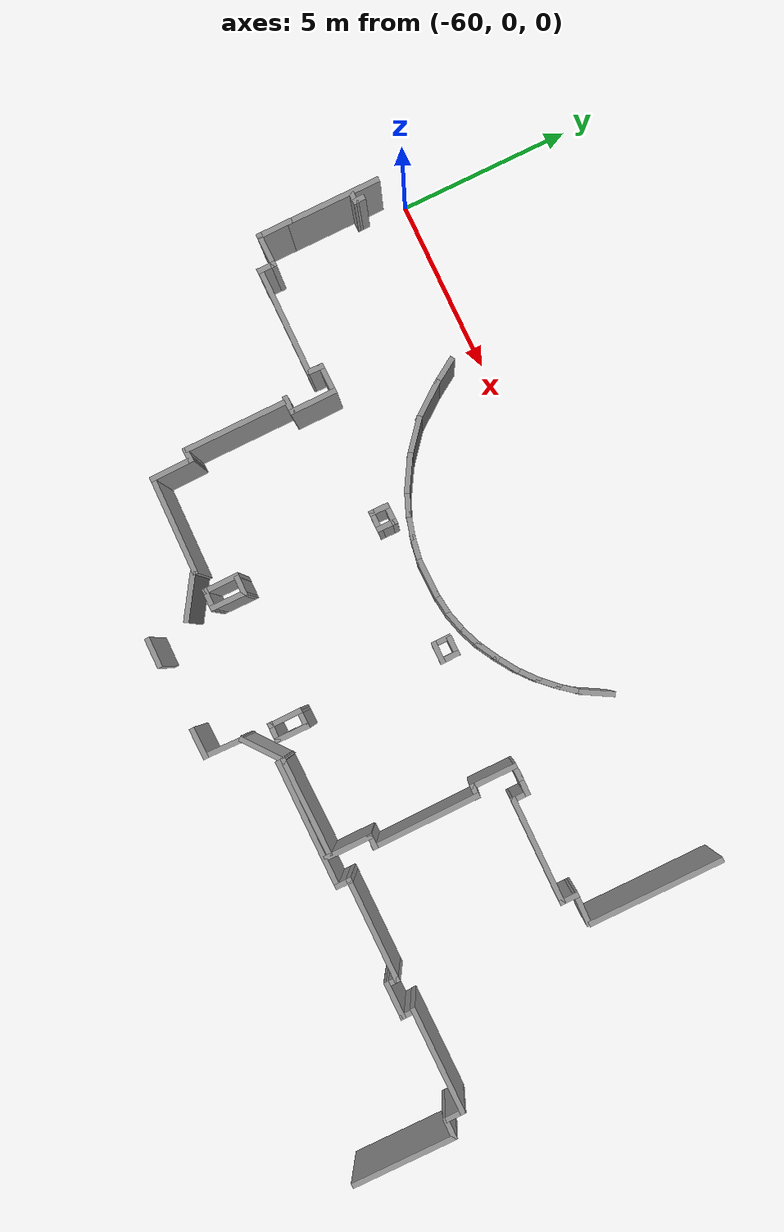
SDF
<sdf version="1.7">
 <model name="TD1-Mapa">
  <pose>-6.249136 -5.50363 0 0 -0 0</pose>
  <link name="Wall_10">
   <collision name="Wall_10_Collision">
    <geometry><box><size>3.14133 0.15 2.5</size></box></geometry>
    <pose>0 0 1.25 0 -0 0</pose>
   </collision>
   <visual name="Wall_10_Visual">
    <pose>0 0 1.25 0 -0 0</pose>
    <geometry><box><size>3.14133 0.15 2.5</size></box></geometry>
    <material>
     <script><uri>file://media/materials/scripts/gazebo.material</uri><name>Gazebo/Grey</name></script>
     <ambient>1 1 1 1</ambient>
    </material>
    <meta><layer>0</layer></meta>
   </visual>
   <pose>-32.074331 -3.879235 0 0 -0 0.0029303</pose>
  </link>
  <link name="Wall_11">
   <collision name="Wall_11_Collision">
    <geometry><box><size>0.6370333 0.15 2.5</size></box></geometry>
    <pose>0 0 1.25 0 -0 0</pose>
   </collision>
   <visual name="Wall_11_Visual">
    <pose>0 0 1.25 0 -0 0</pose>
    <geometry><box><size>0.6370333 0.15 2.5</size></box></geometry>
    <material>
     <script><uri>file://media/materials/scripts/gazebo.material</uri><name>Gazebo/Grey</name></script>
     <ambient>1 1 1 1</ambient>
    </material>
    <meta><layer>0</layer></meta>
   </visual>
   <pose>-30.57313 -4.118338 0 0 -0 -1.552934</pose>
  </link>
  <link name="Wall_118">
   <collision name="Wall_118_Collision">
    <geometry><box><size>1.404333 0.15 2.5</size></box></geometry>
    <pose>0 0 1.25 0 -0 0</pose>
   </collision>
   <visual name="Wall_118_Visual">
    <pose>0 0 1.25 0 -0 0</pose>
    <geometry><box><size>1.404333 0.15 2.5</size></box></geometry>
    <material>
     <script><uri>file://media/materials/scripts/gazebo.material</uri><name>Gazebo/Grey</name></script>
     <ambient>1 1 1 1</ambient>
    </material>
    <meta><layer>0</layer></meta>
   </visual>
   <pose>-46.13293 -4.517734 0 0 -0 2.561139</pose>
  </link>
  <link name="Wall_12">
   <collision name="Wall_12_Collision">
    <geometry><box><size>0.6637303 0.15 2.5</size></box></geometry>
    <pose>0 0 1.25 0 -0 0</pose>
   </collision>
   <visual name="Wall_12_Visual">
    <pose>0 0 1.25 0 -0 0</pose>
    <geometry><box><size>0.6637303 0.15 2.5</size></box></geometry>
    <material>
     <script><uri>file://media/materials/scripts/gazebo.material</uri><name>Gazebo/Grey</name></script>
     <ambient>1 1 1 1</ambient>
    </material>
    <meta><layer>0</layer></meta>
   </visual>
   <pose>-30.31223 -4.366231 0 0 -0 -0.0169343</pose>
  </link>
  <link name="Wall_121">
   <collision name="Wall_121_Collision">
    <geometry><box><size>0.8739353 0.15 2.5</size></box></geometry>
    <pose>0 0 1.25 0 -0 0</pose>
   </collision>
   <visual name="Wall_121_Visual">
    <pose>0 0 1.25 0 -0 0</pose>
    <geometry><box><size>0.8739353 0.15 2.5</size></box></geometry>
    <material>
     <script><uri>file://media/materials/scripts/gazebo.material</uri><name>Gazebo/Grey</name></script>
     <ambient>1 1 1 1</ambient>
    </material>
    <meta><layer>0</layer></meta>
   </visual>
   <pose>-45.195 -6.03653 0 0 -0 -0.0156323</pose>
  </link>
  <link name="Wall_123">
   <collision name="Wall_123_Collision">
    <geometry><box><size>2.886937 0.15 2.5</size></box></geometry>
    <pose>0 0 1.25 0 -0 0</pose>
   </collision>
   <visual name="Wall_123_Visual">
    <pose>0 0 1.25 0 -0 0</pose>
    <geometry><box><size>2.886937 0.15 2.5</size></box></geometry>
    <material>
     <script><uri>file://media/materials/scripts/gazebo.material</uri><name>Gazebo/Grey</name></script>
     <ambient>1 1 1 1</ambient>
    </material>
    <meta><layer>0</layer></meta>
   </visual>
   <pose>-48.04553 -4.0742393 0 0 -0 3.119734</pose>
  </link>
  <link name="Wall_124">
   <collision name="Wall_124_Collision">
    <geometry><box><size>1.282234 0.15 2.5</size></box></geometry>
    <pose>0 0 1.25 0 -0 0</pose>
   </collision>
   <visual name="Wall_124_Visual">
    <pose>0 0 1.25 0 -0 0</pose>
    <geometry><box><size>1.282234 0.15 2.5</size></box></geometry>
    <material>
     <script><uri>file://media/materials/scripts/gazebo.material</uri><name>Gazebo/Grey</name></script>
     <ambient>1 1 1 1</ambient>
    </material>
    <meta><layer>0</layer></meta>
   </visual>
   <pose>-49.42543 -3.477038 0 0 -0 1.591531</pose>
  </link>
  <link name="Wall_126">
   <collision name="Wall_126_Collision">
    <geometry><box><size>0.43153633 0.15 2.5</size></box></geometry>
    <pose>0 0 1.25 0 -0 0</pose>
   </collision>
   <visual name="Wall_126_Visual">
    <pose>0 0 1.25 0 -0 0</pose>
    <geometry><box><size>0.43153633 0.15 2.5</size></box></geometry>
    <material>
     <script><uri>file://media/materials/scripts/gazebo.material</uri><name>Gazebo/Grey</name></script>
     <ambient>1 1 1 1</ambient>
    </material>
    <meta><layer>0</layer></meta>
   </visual>
   <pose>-49.58423 -2.918035 0 0 -0 -3.092738</pose>
  </link>
  <link name="Wall_127">
   <collision name="Wall_127_Collision">
    <geometry><box><size>3.03733 0.15 2.5</size></box></geometry>
    <pose>0 0 1.25 0 -0 0</pose>
   </collision>
   <visual name="Wall_127_Visual">
    <pose>0 0 1.25 0 -0 0</pose>
    <geometry><box><size>3.03733 0.15 2.5</size></box></geometry>
    <material>
     <script><uri>file://media/materials/scripts/gazebo.material</uri><name>Gazebo/Grey</name></script>
     <ambient>1 1 1 1</ambient>
    </material>
    <meta><layer>0</layer></meta>
   </visual>
   <pose>-49.73273 -1.473936 0 0 -0 1.574739</pose>
  </link>
  <link name="Wall_135">
   <collision name="Wall_135_Collision">
    <geometry><box><size>0.5266323 0.15 2.5</size></box></geometry>
    <pose>0 0 1.25 0 -0 0</pose>
   </collision>
   <visual name="Wall_135_Visual">
    <pose>0 0 1.25 0 -0 0</pose>
    <geometry><box><size>0.5266323 0.15 2.5</size></box></geometry>
    <material>
     <script><uri>file://media/materials/scripts/gazebo.material</uri><name>Gazebo/Grey</name></script>
     <ambient>1 1 1 1</ambient>
    </material>
    <meta><layer>0</layer></meta>
   </visual>
   <pose>-49.63593 0.0964343 0 0 -0 3.141539</pose>
  </link>
  <link name="Wall_137">
   <collision name="Wall_137_Collision">
    <geometry><box><size>1.381131 0.15 2.5</size></box></geometry>
    <pose>0 0 1.25 0 -0 0</pose>
   </collision>
   <visual name="Wall_137_Visual">
    <pose>0 0 1.25 0 -0 0</pose>
    <geometry><box><size>1.381131 0.15 2.5</size></box></geometry>
    <material>
     <script><uri>file://media/materials/scripts/gazebo.material</uri><name>Gazebo/Grey</name></script>
     <ambient>1 1 1 1</ambient>
    </material>
    <meta><layer>0</layer></meta>
   </visual>
   <pose>-49.431639 0.7257373 0 0 -0 1.577734</pose>
  </link>
  <link name="Wall_138">
   <collision name="Wall_138_Collision">
    <geometry><box><size>0.8938323 0.15 2.5</size></box></geometry>
    <pose>0 0 1.25 0 -0 0</pose>
   </collision>
   <visual name="Wall_138_Visual">
    <pose>0 0 1.25 0 -0 0</pose>
    <geometry><box><size>0.8938323 0.15 2.5</size></box></geometry>
    <material>
     <script><uri>file://media/materials/scripts/gazebo.material</uri><name>Gazebo/Grey</name></script>
     <ambient>1 1 1 1</ambient>
    </material>
    <meta><layer>0</layer></meta>
   </visual>
   <pose>-49.813 1.337034 0 0 -0 -3.13013</pose>
  </link>
  <link name="Wall_139">
   <collision name="Wall_139_Collision">
    <geometry><box><size>0.4582343 0.15 2.5</size></box></geometry>
    <pose>0 0 1.25 0 -0 0</pose>
   </collision>
   <visual name="Wall_139_Visual">
    <pose>0 0 1.25 0 -0 0</pose>
    <geometry><box><size>0.4582343 0.15 2.5</size></box></geometry>
    <material>
     <script><uri>file://media/materials/scripts/gazebo.material</uri><name>Gazebo/Grey</name></script>
     <ambient>1 1 1 1</ambient>
    </material>
    <meta><layer>0</layer></meta>
   </visual>
   <pose>-50.18923 1.178838 0 0 -0 -1.598537</pose>
  </link>
  <link name="Wall_141">
   <collision name="Wall_141_Collision">
    <geometry><box><size>3.031039 0.15 2.5</size></box></geometry>
    <pose>0 0 1.25 0 -0 0</pose>
   </collision>
   <visual name="Wall_141_Visual">
    <pose>0 0 1.25 0 -0 0</pose>
    <geometry><box><size>3.031039 0.15 2.5</size></box></geometry>
    <material>
     <script><uri>file://media/materials/scripts/gazebo.material</uri><name>Gazebo/Grey</name></script>
     <ambient>1 1 1 1</ambient>
    </material>
    <meta><layer>0</layer></meta>
   </visual>
   <pose>-51.65113 0.9694323 0 0 -0 -0.0029363</pose>
  </link>
  <link name="Wall_143">
   <collision name="Wall_143_Collision">
    <geometry><box><size>0.5432363 0.15 2.5</size></box></geometry>
    <pose>0 0 1.25 0 -0 0</pose>
   </collision>
   <visual name="Wall_143_Visual">
    <pose>0 0 1.25 0 -0 0</pose>
    <geometry><box><size>0.5432363 0.15 2.5</size></box></geometry>
    <material>
     <script><uri>file://media/materials/scripts/gazebo.material</uri><name>Gazebo/Grey</name></script>
     <ambient>1 1 1 1</ambient>
    </material>
    <meta><layer>0</layer></meta>
   </visual>
   <pose>-53.22283 1.159635 0 0 -0 -1.57083</pose>
  </link>
  <link name="Wall_146">
   <collision name="Wall_146_Collision">
    <geometry><box><size>1.008235 0.15 2.5</size></box></geometry>
    <pose>0 0 1.25 0 -0 0</pose>
   </collision>
   <visual name="Wall_146_Visual">
    <pose>0 0 1.25 0 -0 0</pose>
    <geometry><box><size>1.008235 0.15 2.5</size></box></geometry>
    <material>
     <script><uri>file://media/materials/scripts/gazebo.material</uri><name>Gazebo/Grey</name></script>
     <ambient>1 1 1 1</ambient>
    </material>
    <meta><layer>0</layer></meta>
   </visual>
   <pose>-53.64573 1.355236 0 0 -0 0.0045343</pose>
  </link>
  <link name="Wall_149">
   <collision name="Wall_149_Collision">
    <geometry><box><size>1.034735 0.15 2.5</size></box></geometry>
    <pose>0 0 1.25 0 -0 0</pose>
   </collision>
   <visual name="Wall_149_Visual">
    <pose>0 0 1.25 0 -0 0</pose>
    <geometry><box><size>1.034735 0.15 2.5</size></box></geometry>
    <material>
     <script><uri>file://media/materials/scripts/gazebo.material</uri><name>Gazebo/Grey</name></script>
     <ambient>1 1 1 1</ambient>
    </material>
    <meta><layer>0</layer></meta>
   </visual>
   <pose>-54.074733 1.795638 0 0 -0 -1.565237</pose>
  </link>
  <link name="Wall_151">
   <collision name="Wall_151_Collision">
    <geometry><box><size>2.75 0.15 2.5</size></box></geometry>
    <pose>0 0 1.25 0 -0 0</pose>
   </collision>
   <visual name="Wall_151_Visual">
    <pose>0 0 1.25 0 -0 0</pose>
    <geometry><box><size>2.75 0.15 2.5</size></box></geometry>
    <material>
     <script><uri>file://media/materials/scripts/gazebo.material</uri><name>Gazebo/Grey</name></script>
     <ambient>1 1 1 1</ambient>
    </material>
    <meta><layer>0</layer></meta>
   </visual>
   <pose>-54.074937 3.538035 0 0 -0 1.57083</pose>
  </link>
  <link name="Wall_153">
   <collision name="Wall_153_Collision">
    <geometry><box><size>0.3795303 0.15 2.5</size></box></geometry>
    <pose>0 0 1.25 0 -0 0</pose>
   </collision>
   <visual name="Wall_153_Visual">
    <pose>0 0 1.25 0 -0 0</pose>
    <geometry><box><size>0.3795303 0.15 2.5</size></box></geometry>
    <material>
     <script><uri>file://media/materials/scripts/gazebo.material</uri><name>Gazebo/Grey</name></script>
     <ambient>1 1 1 1</ambient>
    </material>
    <meta><layer>0</layer></meta>
   </visual>
   <pose>-53.91733 4.0747373 0 0 -0 0</pose>
  </link>
  <link name="Wall_154">
   <collision name="Wall_154_Collision">
    <geometry><box><size>0.3569363 0.15 2.5</size></box></geometry>
    <pose>0 0 1.25 0 -0 0</pose>
   </collision>
   <visual name="Wall_154_Visual">
    <pose>0 0 1.25 0 -0 0</pose>
    <geometry><box><size>0.3569363 0.15 2.5</size></box></geometry>
    <material>
     <script><uri>file://media/materials/scripts/gazebo.material</uri><name>Gazebo/Grey</name></script>
     <ambient>1 1 1 1</ambient>
    </material>
    <meta><layer>0</layer></meta>
   </visual>
   <pose>-53.80583 4.181135 0 0 -0 1.602034</pose>
  </link>
  <link name="Wall_16">
   <collision name="Wall_16_Collision">
    <geometry><box><size>3.083039 0.15 2.5</size></box></geometry>
    <pose>0 0 1.25 0 -0 0</pose>
   </collision>
   <visual name="Wall_16_Visual">
    <pose>0 0 1.25 0 -0 0</pose>
    <geometry><box><size>3.083039 0.15 2.5</size></box></geometry>
    <material>
     <script><uri>file://media/materials/scripts/gazebo.material</uri><name>Gazebo/Grey</name></script>
     <ambient>1 1 1 1</ambient>
    </material>
    <meta><layer>0</layer></meta>
   </visual>
   <pose>-30.06263 -5.837039 0 0 -0 -1.575533</pose>
  </link>
  <link name="Wall_2">
   <collision name="Wall_2_Collision">
    <geometry><box><size>3.795532 0.15 2.5</size></box></geometry>
    <pose>0 0 1.25 0 -0 0</pose>
   </collision>
   <visual name="Wall_2_Visual">
    <pose>0 0 1.25 0 -0 0</pose>
    <geometry><box><size>3.795532 0.15 2.5</size></box></geometry>
    <material>
     <script><uri>file://media/materials/scripts/gazebo.material</uri><name>Gazebo/Grey</name></script>
     <ambient>1 1 1 1</ambient>
    </material>
    <meta><layer>0</layer></meta>
   </visual>
   <pose>-39.25523 -4.287838 0 0 -0 0</pose>
  </link>
  <link name="Wall_221">
   <collision name="Wall_221_Collision">
    <geometry><box><size>1.081638 0.15 2.5</size></box></geometry>
    <pose>0 0 1.25 0 -0 0</pose>
   </collision>
   <visual name="Wall_221_Visual">
    <pose>0 0 1.25 0 -0 0</pose>
    <geometry><box><size>1.081638 0.15 2.5</size></box></geometry>
    <material>
     <script><uri>file://media/materials/scripts/gazebo.material</uri><name>Gazebo/Grey</name></script>
     <ambient>1 1 1 1</ambient>
    </material>
    <meta><layer>0</layer></meta>
   </visual>
   <pose>-46.08893 -3.611437 0 0 -0 -1.563835</pose>
  </link>
  <link name="Wall_222">
   <collision name="Wall_222_Collision">
    <geometry><box><size>0.6414363 0.15 2.5</size></box></geometry>
    <pose>0 0 1.25 0 -0 0</pose>
   </collision>
   <visual name="Wall_222_Visual">
    <pose>0 0 1.25 0 -0 0</pose>
    <geometry><box><size>0.6414363 0.15 2.5</size></box></geometry>
    <material>
     <script><uri>file://media/materials/scripts/gazebo.material</uri><name>Gazebo/Grey</name></script>
     <ambient>1 1 1 1</ambient>
    </material>
    <meta><layer>0</layer></meta>
   </visual>
   <pose>-45.84 -4.083337 0 0 -0 -0.026331</pose>
  </link>
  <link name="Wall_223">
   <collision name="Wall_223_Collision">
    <geometry><box><size>1.08093 0.15 2.5</size></box></geometry>
    <pose>0 0 1.25 0 -0 0</pose>
   </collision>
   <visual name="Wall_223_Visual">
    <pose>0 0 1.25 0 -0 0</pose>
    <geometry><box><size>1.08093 0.15 2.5</size></box></geometry>
    <material>
     <script><uri>file://media/materials/scripts/gazebo.material</uri><name>Gazebo/Grey</name></script>
     <ambient>1 1 1 1</ambient>
    </material>
    <meta><layer>0</layer></meta>
   </visual>
   <pose>-45.59123 -3.624339 0 0 -0 1.563835</pose>
  </link>
  <link name="Wall_224">
   <collision name="Wall_224_Collision">
    <geometry><box><size>0.589737 0.15 2.5</size></box></geometry>
    <pose>0 0 1.25 0 -0 0</pose>
   </collision>
   <visual name="Wall_224_Visual">
    <pose>0 0 1.25 0 -0 0</pose>
    <geometry><box><size>0.589737 0.15 2.5</size></box></geometry>
    <material>
     <script><uri>file://media/materials/scripts/gazebo.material</uri><name>Gazebo/Grey</name></script>
     <ambient>1 1 1 1</ambient>
    </material>
    <meta><layer>0</layer></meta>
   </visual>
   <pose>-45.80773 -3.155732 0 0 -0 3.126839</pose>
  </link>
  <link name="Wall_226">
   <collision name="Wall_226_Collision">
    <geometry><box><size>0.5768343 0.15 2.5</size></box></geometry>
    <pose>0 0 1.25 0 -0 0</pose>
   </collision>
   <visual name="Wall_226_Visual">
    <pose>0 0 1.25 0 -0 0</pose>
    <geometry><box><size>0.5768343 0.15 2.5</size></box></geometry>
    <material>
     <script><uri>file://media/materials/scripts/gazebo.material</uri><name>Gazebo/Grey</name></script>
     <ambient>1 1 1 1</ambient>
    </material>
    <meta><layer>0</layer></meta>
   </visual>
   <pose>-41.87743 -4.047831 0 0 -0 3.126434</pose>
  </link>
  <link name="Wall_227">
   <collision name="Wall_227_Collision">
    <geometry><box><size>1.003532 0.15 2.5</size></box></geometry>
    <pose>0 0 1.25 0 -0 0</pose>
   </collision>
   <visual name="Wall_227_Visual">
    <pose>0 0 1.25 0 -0 0</pose>
    <geometry><box><size>1.003532 0.15 2.5</size></box></geometry>
    <material>
     <script><uri>file://media/materials/scripts/gazebo.material</uri><name>Gazebo/Grey</name></script>
     <ambient>1 1 1 1</ambient>
    </material>
    <meta><layer>0</layer></meta>
   </visual>
   <pose>-42.09393 -3.617933 0 0 -0 1.578337</pose>
  </link>
  <link name="Wall_228">
   <collision name="Wall_228_Collision">
    <geometry><box><size>0.6025303 0.15 2.5</size></box></geometry>
    <pose>0 0 1.25 0 -0 0</pose>
   </collision>
   <visual name="Wall_228_Visual">
    <pose>0 0 1.25 0 -0 0</pose>
    <geometry><box><size>0.6025303 0.15 2.5</size></box></geometry>
    <material>
     <script><uri>file://media/materials/scripts/gazebo.material</uri><name>Gazebo/Grey</name></script>
     <ambient>1 1 1 1</ambient>
    </material>
    <meta><layer>0</layer></meta>
   </visual>
   <pose>-41.87093 -3.191238 0 0 -0 0</pose>
  </link>
  <link name="Wall_229">
   <collision name="Wall_229_Collision">
    <geometry><box><size>0.9839303 0.15 2.5</size></box></geometry>
    <pose>0 0 1.25 0 -0 0</pose>
   </collision>
   <visual name="Wall_229_Visual">
    <pose>0 0 1.25 0 -0 0</pose>
    <geometry><box><size>0.9839303 0.15 2.5</size></box></geometry>
    <material>
     <script><uri>file://media/materials/scripts/gazebo.material</uri><name>Gazebo/Grey</name></script>
     <ambient>1 1 1 1</ambient>
    </material>
    <meta><layer>0</layer></meta>
   </visual>
   <pose>-41.64463 -3.608233 0 0 -0 -1.57083</pose>
  </link>
  <link name="Wall_231">
   <collision name="Wall_231_Collision">
    <geometry><box><size>0.6125303 0.15 2.5</size></box></geometry>
    <pose>0 0 1.25 0 -0 0</pose>
   </collision>
   <visual name="Wall_231_Visual">
    <pose>0 0 1.25 0 -0 0</pose>
    <geometry><box><size>0.6125303 0.15 2.5</size></box></geometry>
    <material>
     <script><uri>file://media/materials/scripts/gazebo.material</uri><name>Gazebo/Grey</name></script>
     <ambient>1 1 1 1</ambient>
    </material>
    <meta><layer>0</layer></meta>
   </visual>
   <pose>-45.80513 1.292136 0 0 -0 0</pose>
  </link>
  <link name="Wall_232">
   <collision name="Wall_232_Collision">
    <geometry><box><size>0.592432 0.15 2.5</size></box></geometry>
    <pose>0 0 1.25 0 -0 0</pose>
   </collision>
   <visual name="Wall_232_Visual">
    <pose>0 0 1.25 0 -0 0</pose>
    <geometry><box><size>0.592432 0.15 2.5</size></box></geometry>
    <material>
     <script><uri>file://media/materials/scripts/gazebo.material</uri><name>Gazebo/Grey</name></script>
     <ambient>1 1 1 1</ambient>
    </material>
    <meta><layer>0</layer></meta>
   </visual>
   <pose>-45.57413 1.0740393 0 0 -0 -1.57083</pose>
  </link>
  <link name="Wall_233">
   <collision name="Wall_233_Collision">
    <geometry><box><size>0.6220313 0.15 2.5</size></box></geometry>
    <pose>0 0 1.25 0 -0 0</pose>
   </collision>
   <visual name="Wall_233_Visual">
    <pose>0 0 1.25 0 -0 0</pose>
    <geometry><box><size>0.6220313 0.15 2.5</size></box></geometry>
    <material>
     <script><uri>file://media/materials/scripts/gazebo.material</uri><name>Gazebo/Grey</name></script>
     <ambient>1 1 1 1</ambient>
    </material>
    <meta><layer>0</layer></meta>
   </visual>
   <pose>-45.81 0.8497343 0 0 -0 3.141539</pose>
  </link>
  <link name="Wall_234">
   <collision name="Wall_234_Collision">
    <geometry><box><size>0.5825383 0.15 2.5</size></box></geometry>
    <pose>0 0 1.25 0 -0 0</pose>
   </collision>
   <visual name="Wall_234_Visual">
    <pose>0 0 1.25 0 -0 0</pose>
    <geometry><box><size>0.5825383 0.15 2.5</size></box></geometry>
    <material>
     <script><uri>file://media/materials/scripts/gazebo.material</uri><name>Gazebo/Grey</name></script>
     <ambient>1 1 1 1</ambient>
    </material>
    <meta><layer>0</layer></meta>
   </visual>
   <pose>-46.046 1.066034 0 0 -0 1.57083</pose>
  </link>
  <link name="Wall_236">
   <collision name="Wall_236_Collision">
    <geometry><box><size>0.6022353 0.15 2.5</size></box></geometry>
    <pose>0 0 1.25 0 -0 0</pose>
   </collision>
   <visual name="Wall_236_Visual">
    <pose>0 0 1.25 0 -0 0</pose>
    <geometry><box><size>0.6022353 0.15 2.5</size></box></geometry>
    <material>
     <script><uri>file://media/materials/scripts/gazebo.material</uri><name>Gazebo/Grey</name></script>
     <ambient>1 1 1 1</ambient>
    </material>
    <meta><layer>0</layer></meta>
   </visual>
   <pose>-41.88733 1.282333 0 0 -0 0</pose>
  </link>
  <link name="Wall_237">
   <collision name="Wall_237_Collision">
    <geometry><box><size>0.5925323 0.15 2.5</size></box></geometry>
    <pose>0 0 1.25 0 -0 0</pose>
   </collision>
   <visual name="Wall_237_Visual">
    <pose>0 0 1.25 0 -0 0</pose>
    <geometry><box><size>0.5925323 0.15 2.5</size></box></geometry>
    <material>
     <script><uri>file://media/materials/scripts/gazebo.material</uri><name>Gazebo/Grey</name></script>
     <ambient>1 1 1 1</ambient>
    </material>
    <meta><layer>0</layer></meta>
   </visual>
   <pose>-41.65623 1.061132 0 0 -0 -1.548538</pose>
  </link>
  <link name="Wall_238">
   <collision name="Wall_238_Collision">
    <geometry><box><size>0.6462343 0.15 2.5</size></box></geometry>
    <pose>0 0 1.25 0 -0 0</pose>
   </collision>
   <visual name="Wall_238_Visual">
    <pose>0 0 1.25 0 -0 0</pose>
    <geometry><box><size>0.6462343 0.15 2.5</size></box></geometry>
    <material>
     <script><uri>file://media/materials/scripts/gazebo.material</uri><name>Gazebo/Grey</name></script>
     <ambient>1 1 1 1</ambient>
    </material>
    <meta><layer>0</layer></meta>
   </visual>
   <pose>-41.89943 0.8418323 0 0 -0 3.13393</pose>
  </link>
  <link name="Wall_239">
   <collision name="Wall_239_Collision">
    <geometry><box><size>0.5692363 0.15 2.5</size></box></geometry>
    <pose>0 0 1.25 0 -0 0</pose>
   </collision>
   <visual name="Wall_239_Visual">
    <pose>0 0 1.25 0 -0 0</pose>
    <geometry><box><size>0.5692363 0.15 2.5</size></box></geometry>
    <material>
     <script><uri>file://media/materials/scripts/gazebo.material</uri><name>Gazebo/Grey</name></script>
     <ambient>1 1 1 1</ambient>
    </material>
    <meta><layer>0</layer></meta>
   </visual>
   <pose>-42.15013 1.05323 0 0 -0 1.583136</pose>
  </link>
  <link name="Wall_305">
   <collision name="Wall_305_Collision">
    <geometry><box><size>1.00543 0.15 2.5</size></box></geometry>
    <pose>0 0 1.25 0 -0 0</pose>
   </collision>
   <visual name="Wall_305_Visual">
    <pose>0 0 1.25 0 -0 0</pose>
    <geometry><box><size>1.00543 0.15 2.5</size></box></geometry>
    <material>
     <script><uri>file://media/materials/scripts/gazebo.material</uri><name>Gazebo/Grey</name></script>
     <ambient>1 1 1 1</ambient>
    </material>
    <meta><layer>0</layer></meta>
   </visual>
   <pose>-39.09183 4.207631 0 0 -0 -2.08723</pose>
  </link>
  <link name="Wall_306">
   <collision name="Wall_306_Collision">
    <geometry><box><size>0.7594323 0.15 2.5</size></box></geometry>
    <pose>0 0 1.25 0 -0 0</pose>
   </collision>
   <visual name="Wall_306_Visual">
    <pose>0 0 1.25 0 -0 0</pose>
    <geometry><box><size>0.7594323 0.15 2.5</size></box></geometry>
    <material>
     <script><uri>file://media/materials/scripts/gazebo.material</uri><name>Gazebo/Grey</name></script>
     <ambient>1 1 1 1</ambient>
    </material>
    <meta><layer>0</layer></meta>
   </visual>
   <pose>-39.49533 3.599239 0 0 -0 -2.253631</pose>
  </link>
  <link name="Wall_307">
   <collision name="Wall_307_Collision">
    <geometry><box><size>0.7206333 0.15 2.5</size></box></geometry>
    <pose>0 0 1.25 0 -0 0</pose>
   </collision>
   <visual name="Wall_307_Visual">
    <pose>0 0 1.25 0 -0 0</pose>
    <geometry><box><size>0.7206333 0.15 2.5</size></box></geometry>
    <material>
     <script><uri>file://media/materials/scripts/gazebo.material</uri><name>Gazebo/Grey</name></script>
     <ambient>1 1 1 1</ambient>
    </material>
    <meta><layer>0</layer></meta>
   </visual>
   <pose>-39.88613 3.158031 0 0 -0 -2.340537</pose>
  </link>
  <link name="Wall_309">
   <collision name="Wall_309_Collision">
    <geometry><box><size>0.7830333 0.15 2.5</size></box></geometry>
    <pose>0 0 1.25 0 -0 0</pose>
   </collision>
   <visual name="Wall_309_Visual">
    <pose>0 0 1.25 0 -0 0</pose>
    <geometry><box><size>0.7830333 0.15 2.5</size></box></geometry>
    <material>
     <script><uri>file://media/materials/scripts/gazebo.material</uri><name>Gazebo/Grey</name></script>
     <ambient>1 1 1 1</ambient>
    </material>
    <meta><layer>0</layer></meta>
   </visual>
   <pose>-40.329 2.745037 0 0 -0 -2.445339</pose>
  </link>
  <link name="Wall_310">
   <collision name="Wall_310_Collision">
    <geometry><box><size>0.7794313 0.15 2.5</size></box></geometry>
    <pose>0 0 1.25 0 -0 0</pose>
   </collision>
   <visual name="Wall_310_Visual">
    <pose>0 0 1.25 0 -0 0</pose>
    <geometry><box><size>0.7794313 0.15 2.5</size></box></geometry>
    <material>
     <script><uri>file://media/materials/scripts/gazebo.material</uri><name>Gazebo/Grey</name></script>
     <ambient>1 1 1 1</ambient>
    </material>
    <meta><layer>0</layer></meta>
   </visual>
   <pose>-40.83643 2.371732 0 0 -0 -2.569536</pose>
  </link>
  <link name="Wall_311">
   <collision name="Wall_311_Collision">
    <geometry><box><size>0.7572353 0.15 2.5</size></box></geometry>
    <pose>0 0 1.25 0 -0 0</pose>
   </collision>
   <visual name="Wall_311_Visual">
    <pose>0 0 1.25 0 -0 0</pose>
    <geometry><box><size>0.7572353 0.15 2.5</size></box></geometry>
    <material>
     <script><uri>file://media/materials/scripts/gazebo.material</uri><name>Gazebo/Grey</name></script>
     <ambient>1 1 1 1</ambient>
    </material>
    <meta><layer>0</layer></meta>
   </visual>
   <pose>-41.36673 2.05433 0 0 -0 -2.635938</pose>
  </link>
  <link name="Wall_312">
   <collision name="Wall_312_Collision">
    <geometry><box><size>0.6669353 0.15 2.5</size></box></geometry>
    <pose>0 0 1.25 0 -0 0</pose>
   </collision>
   <visual name="Wall_312_Visual">
    <pose>0 0 1.25 0 -0 0</pose>
    <geometry><box><size>0.6669353 0.15 2.5</size></box></geometry>
    <material>
     <script><uri>file://media/materials/scripts/gazebo.material</uri><name>Gazebo/Grey</name></script>
     <ambient>1 1 1 1</ambient>
    </material>
    <meta><layer>0</layer></meta>
   </visual>
   <pose>-41.87573 1.809337 0 0 -0 -2.753237</pose>
  </link>
  <link name="Wall_314">
   <collision name="Wall_314_Collision">
    <geometry><box><size>0.6688333 0.15 2.5</size></box></geometry>
    <pose>0 0 1.25 0 -0 0</pose>
   </collision>
   <visual name="Wall_314_Visual">
    <pose>0 0 1.25 0 -0 0</pose>
    <geometry><box><size>0.6688333 0.15 2.5</size></box></geometry>
    <material>
     <script><uri>file://media/materials/scripts/gazebo.material</uri><name>Gazebo/Grey</name></script>
     <ambient>1 1 1 1</ambient>
    </material>
    <meta><layer>0</layer></meta>
   </visual>
   <pose>-42.44623 1.619935 0 0 -0 -2.872839</pose>
  </link>
  <link name="Wall_316">
   <collision name="Wall_316_Collision">
    <geometry><box><size>0.6588373 0.15 2.5</size></box></geometry>
    <pose>0 0 1.25 0 -0 0</pose>
   </collision>
   <visual name="Wall_316_Visual">
    <pose>0 0 1.25 0 -0 0</pose>
    <geometry><box><size>0.6588373 0.15 2.5</size></box></geometry>
    <material>
     <script><uri>file://media/materials/scripts/gazebo.material</uri><name>Gazebo/Grey</name></script>
     <ambient>1 1 1 1</ambient>
    </material>
    <meta><layer>0</layer></meta>
   </visual>
   <pose>-43.07413 1.501 0 0 -0 -3.011839</pose>
  </link>
  <link name="Wall_318">
   <collision name="Wall_318_Collision">
    <geometry><box><size>1.134332 0.15 2.5</size></box></geometry>
    <pose>0 0 1.25 0 -0 0</pose>
   </collision>
   <visual name="Wall_318_Visual">
    <pose>0 0 1.25 0 -0 0</pose>
    <geometry><box><size>1.134332 0.15 2.5</size></box></geometry>
    <material>
     <script><uri>file://media/materials/scripts/gazebo.material</uri><name>Gazebo/Grey</name></script>
     <ambient>1 1 1 1</ambient>
    </material>
    <meta><layer>0</layer></meta>
   </visual>
   <pose>-43.81543 1.460135 0 0 -0 -3.125437</pose>
  </link>
  <link name="Wall_319">
   <collision name="Wall_319_Collision">
    <geometry><box><size>0.8295333 0.15 2.5</size></box></geometry>
    <pose>0 0 1.25 0 -0 0</pose>
   </collision>
   <visual name="Wall_319_Visual">
    <pose>0 0 1.25 0 -0 0</pose>
    <geometry><box><size>0.8295333 0.15 2.5</size></box></geometry>
    <material>
     <script><uri>file://media/materials/scripts/gazebo.material</uri><name>Gazebo/Grey</name></script>
     <ambient>1 1 1 1</ambient>
    </material>
    <meta><layer>0</layer></meta>
   </visual>
   <pose>-44.64283 1.506732 0 0 -0 2.98053</pose>
  </link>
  <link name="Wall_320">
   <collision name="Wall_320_Collision">
    <geometry><box><size>0.7846303 0.15 2.5</size></box></geometry>
    <pose>0 0 1.25 0 -0 0</pose>
   </collision>
   <visual name="Wall_320_Visual">
    <pose>0 0 1.25 0 -0 0</pose>
    <geometry><box><size>0.7846303 0.15 2.5</size></box></geometry>
    <material>
     <script><uri>file://media/materials/scripts/gazebo.material</uri><name>Gazebo/Grey</name></script>
     <ambient>1 1 1 1</ambient>
    </material>
    <meta><layer>0</layer></meta>
   </visual>
   <pose>-45.28423 1.645035 0 0 -0 2.874138</pose>
  </link>
  <link name="Wall_321">
   <collision name="Wall_321_Collision">
    <geometry><box><size>0.7821303 0.15 2.5</size></box></geometry>
    <pose>0 0 1.25 0 -0 0</pose>
   </collision>
   <visual name="Wall_321_Visual">
    <pose>0 0 1.25 0 -0 0</pose>
    <geometry><box><size>0.7821303 0.15 2.5</size></box></geometry>
    <material>
     <script><uri>file://media/materials/scripts/gazebo.material</uri><name>Gazebo/Grey</name></script>
     <ambient>1 1 1 1</ambient>
    </material>
    <meta><layer>0</layer></meta>
   </visual>
   <pose>-45.88373 1.846238 0 0 -0 2.761039</pose>
  </link>
  <link name="Wall_322">
   <collision name="Wall_322_Collision">
    <geometry><box><size>1.104737 0.15 2.5</size></box></geometry>
    <pose>0 0 1.25 0 -0 0</pose>
   </collision>
   <visual name="Wall_322_Visual">
    <pose>0 0 1.25 0 -0 0</pose>
    <geometry><box><size>1.104737 0.15 2.5</size></box></geometry>
    <material>
     <script><uri>file://media/materials/scripts/gazebo.material</uri><name>Gazebo/Grey</name></script>
     <ambient>1 1 1 1</ambient>
    </material>
    <meta><layer>0</layer></meta>
   </visual>
   <pose>-46.588 2.20683 0 0 -0 2.60723</pose>
  </link>
  <link name="Wall_323">
   <collision name="Wall_323_Collision">
    <geometry><box><size>1.168738 0.15 2.5</size></box></geometry>
    <pose>0 0 1.25 0 -0 0</pose>
   </collision>
   <visual name="Wall_323_Visual">
    <pose>0 0 1.25 0 -0 0</pose>
    <geometry><box><size>1.168738 0.15 2.5</size></box></geometry>
    <material>
     <script><uri>file://media/materials/scripts/gazebo.material</uri><name>Gazebo/Grey</name></script>
     <ambient>1 1 1 1</ambient>
    </material>
    <meta><layer>0</layer></meta>
   </visual>
   <pose>-47.39283 2.772733 0 0 -0 2.455238</pose>
  </link>
  <link name="Wall_330">
   <collision name="Wall_330_Collision">
    <geometry><box><size>0.8609393 0.15 2.5</size></box></geometry>
    <pose>0 0 1.25 0 -0 0</pose>
   </collision>
   <visual name="Wall_330_Visual">
    <pose>0 0 1.25 0 -0 0</pose>
    <geometry><box><size>0.8609393 0.15 2.5</size></box></geometry>
    <material>
     <script><uri>file://media/materials/scripts/gazebo.material</uri><name>Gazebo/Grey</name></script>
     <ambient>1 1 1 1</ambient>
    </material>
    <meta><layer>0</layer></meta>
   </visual>
   <pose>-48.64843 4.260138 0 0 -0 -1.002639</pose>
  </link>
  <link name="Wall_331">
   <collision name="Wall_331_Collision">
    <geometry><box><size>1.241536 0.15 2.5</size></box></geometry>
    <pose>0 0 1.25 0 -0 0</pose>
   </collision>
   <visual name="Wall_331_Visual">
    <pose>0 0 1.25 0 -0 0</pose>
    <geometry><box><size>1.241536 0.15 2.5</size></box></geometry>
    <material>
     <script><uri>file://media/materials/scripts/gazebo.material</uri><name>Gazebo/Grey</name></script>
     <ambient>1 1 1 1</ambient>
    </material>
    <meta><layer>0</layer></meta>
   </visual>
   <pose>-48.12563 3.526938 0 0 -0 -0.917935</pose>
  </link>
  <link name="Wall_4">
   <collision name="Wall_4_Collision">
    <geometry><box><size>0.5 0.15 2.5</size></box></geometry>
    <pose>0 0 1.25 0 -0 0</pose>
   </collision>
   <visual name="Wall_4_Visual">
    <pose>0 0 1.25 0 -0 0</pose>
    <geometry><box><size>0.5 0.15 2.5</size></box></geometry>
    <material>
     <script><uri>file://media/materials/scripts/gazebo.material</uri><name>Gazebo/Grey</name></script>
     <ambient>1 1 1 1</ambient>
    </material>
    <meta><layer>0</layer></meta>
   </visual>
   <pose>-37.431234 -4.112838 0 0 -0 1.57083</pose>
  </link>
  <link name="Wall_5">
   <collision name="Wall_5_Collision">
    <geometry><box><size>3.083434 0.15 2.5</size></box></geometry>
    <pose>0 0 1.25 0 -0 0</pose>
   </collision>
   <visual name="Wall_5_Visual">
    <pose>0 0 1.25 0 -0 0</pose>
    <geometry><box><size>3.083434 0.15 2.5</size></box></geometry>
    <material>
     <script><uri>file://media/materials/scripts/gazebo.material</uri><name>Gazebo/Grey</name></script>
     <ambient>1 1 1 1</ambient>
    </material>
    <meta><layer>0</layer></meta>
   </visual>
   <pose>-35.96573 -3.937134 0 0 -0 0.0005303</pose>
  </link>
  <link name="Wall_59">
   <collision name="Wall_59_Collision">
    <geometry><box><size>0.9119303 0.15 2.5</size></box></geometry>
    <pose>0 0 1.25 0 -0 0</pose>
   </collision>
   <visual name="Wall_59_Visual">
    <pose>0 0 1.25 0 -0 0</pose>
    <geometry><box><size>0.9119303 0.15 2.5</size></box></geometry>
    <material>
     <script><uri>file://media/materials/scripts/gazebo.material</uri><name>Gazebo/Grey</name></script>
     <ambient>1 1 1 1</ambient>
    </material>
    <meta><layer>0</layer></meta>
   </visual>
   <pose>-42.48033 -5.986334 0 0 -0 -3.126637</pose>
  </link>
  <link name="Wall_6">
   <collision name="Wall_6_Collision">
    <geometry><box><size>0.43153833 0.15 2.5</size></box></geometry>
    <pose>0 0 1.25 0 -0 0</pose>
   </collision>
   <visual name="Wall_6_Visual">
    <pose>0 0 1.25 0 -0 0</pose>
    <geometry><box><size>0.43153833 0.15 2.5</size></box></geometry>
    <material>
     <script><uri>file://media/materials/scripts/gazebo.material</uri><name>Gazebo/Grey</name></script>
     <ambient>1 1 1 1</ambient>
    </material>
    <meta><layer>0</layer></meta>
   </visual>
   <pose>-34.499 -4.0749333 0 0 -0 -1.57083</pose>
  </link>
  <link name="Wall_63">
   <collision name="Wall_63_Collision">
    <geometry><box><size>1.173335 0.15 2.5</size></box></geometry>
    <pose>0 0 1.25 0 -0 0</pose>
   </collision>
   <visual name="Wall_63_Visual">
    <pose>0 0 1.25 0 -0 0</pose>
    <geometry><box><size>1.173335 0.15 2.5</size></box></geometry>
    <material>
     <script><uri>file://media/materials/scripts/gazebo.material</uri><name>Gazebo/Grey</name></script>
     <ambient>1 1 1 1</ambient>
    </material>
    <meta><layer>0</layer></meta>
   </visual>
   <pose>-42.08823 -5.411438 0 0 -0 1.548538</pose>
  </link>
  <link name="Wall_66">
   <collision name="Wall_66_Collision">
    <geometry><box><size>1.382534 0.15 2.5</size></box></geometry>
    <pose>0 0 1.25 0 -0 0</pose>
   </collision>
   <visual name="Wall_66_Visual">
    <pose>0 0 1.25 0 -0 0</pose>
    <geometry><box><size>1.382534 0.15 2.5</size></box></geometry>
    <material>
     <script><uri>file://media/materials/scripts/gazebo.material</uri><name>Gazebo/Grey</name></script>
     <ambient>1 1 1 1</ambient>
    </material>
    <meta><layer>0</layer></meta>
   </visual>
   <pose>-41.58823 -4.524239 0 0 -0 0.6552333</pose>
  </link>
  <link name="Wall_67">
   <collision name="Wall_67_Collision">
    <geometry><box><size>2.935838 0.15 2.5</size></box></geometry>
    <pose>0 0 1.25 0 -0 0</pose>
   </collision>
   <visual name="Wall_67_Visual">
    <pose>0 0 1.25 0 -0 0</pose>
    <geometry><box><size>2.935838 0.15 2.5</size></box></geometry>
    <material>
     <script><uri>file://media/materials/scripts/gazebo.material</uri><name>Gazebo/Grey</name></script>
     <ambient>1 1 1 1</ambient>
    </material>
    <meta><layer>0</layer></meta>
   </visual>
   <pose>-39.70673 -4.131537 0 0 -0 0.0123343</pose>
  </link>
  <link name="Wall_69">
   <collision name="Wall_69_Collision">
    <geometry><box><size>1.420435 0.15 2.5</size></box></geometry>
    <pose>0 0 1.25 0 -0 0</pose>
   </collision>
   <visual name="Wall_69_Visual">
    <pose>0 0 1.25 0 -0 0</pose>
    <geometry><box><size>1.420435 0.15 2.5</size></box></geometry>
    <material>
     <script><uri>file://media/materials/scripts/gazebo.material</uri><name>Gazebo/Grey</name></script>
     <ambient>1 1 1 1</ambient>
    </material>
    <meta><layer>0</layer></meta>
   </visual>
   <pose>-38.24933 -3.576832 0 0 -0 -1.561935</pose>
  </link>
  <link name="Wall_7">
   <collision name="Wall_7_Collision">
    <geometry><box><size>1.099138 0.15 2.5</size></box></geometry>
    <pose>0 0 1.25 0 -0 0</pose>
   </collision>
   <visual name="Wall_7_Visual">
    <pose>0 0 1.25 0 -0 0</pose>
    <geometry><box><size>1.099138 0.15 2.5</size></box></geometry>
    <material>
     <script><uri>file://media/materials/scripts/gazebo.material</uri><name>Gazebo/Grey</name></script>
     <ambient>1 1 1 1</ambient>
    </material>
    <meta><layer>0</layer></meta>
   </visual>
   <pose>-34.02443 -4.219432 0 0 -0 0.0060323</pose>
  </link>
  <link name="Wall_71">
   <collision name="Wall_71_Collision">
    <geometry><box><size>0.43143433 0.15 2.5</size></box></geometry>
    <pose>0 0 1.25 0 -0 0</pose>
   </collision>
   <visual name="Wall_71_Visual">
    <pose>0 0 1.25 0 -0 0</pose>
    <geometry><box><size>0.43143433 0.15 2.5</size></box></geometry>
    <material>
     <script><uri>file://media/materials/scripts/gazebo.material</uri><name>Gazebo/Grey</name></script>
     <ambient>1 1 1 1</ambient>
    </material>
    <meta><layer>0</layer></meta>
   </visual>
   <pose>-38.09423 -2.929936 0 0 -0 0</pose>
  </link>
  <link name="Wall_73">
   <collision name="Wall_73_Collision">
    <geometry><box><size>1.389433 0.15 2.5</size></box></geometry>
    <pose>0 0 1.25 0 -0 0</pose>
   </collision>
   <visual name="Wall_73_Visual">
    <pose>0 0 1.25 0 -0 0</pose>
    <geometry><box><size>1.389433 0.15 2.5</size></box></geometry>
    <material>
     <script><uri>file://media/materials/scripts/gazebo.material</uri><name>Gazebo/Grey</name></script>
     <ambient>1 1 1 1</ambient>
    </material>
    <meta><layer>0</layer></meta>
   </visual>
   <pose>-38.275 0.7417313 0 0 -0 -1.568531</pose>
  </link>
  <link name="Wall_74">
   <collision name="Wall_74_Collision">
    <geometry><box><size>0.4291343 0.15 2.5</size></box></geometry>
    <pose>0 0 1.25 0 -0 0</pose>
   </collision>
   <visual name="Wall_74_Visual">
    <pose>0 0 1.25 0 -0 0</pose>
    <geometry><box><size>0.4291343 0.15 2.5</size></box></geometry>
    <material>
     <script><uri>file://media/materials/scripts/gazebo.material</uri><name>Gazebo/Grey</name></script>
     <ambient>1 1 1 1</ambient>
    </material>
    <meta><layer>0</layer></meta>
   </visual>
   <pose>-38.12423 0.1198303 0 0 -0 -0.0157343</pose>
  </link>
  <link name="Wall_76">
   <collision name="Wall_76_Collision">
    <geometry><box><size>3.212831 0.15 2.5</size></box></geometry>
    <pose>0 0 1.25 0 -0 0</pose>
   </collision>
   <visual name="Wall_76_Visual">
    <pose>0 0 1.25 0 -0 0</pose>
    <geometry><box><size>3.212831 0.15 2.5</size></box></geometry>
    <material>
     <script><uri>file://media/materials/scripts/gazebo.material</uri><name>Gazebo/Grey</name></script>
     <ambient>1 1 1 1</ambient>
    </material>
    <meta><layer>0</layer></meta>
   </visual>
   <pose>-37.97333 -1.413635 0 0 -0 -1.556938</pose>
  </link>
  <link name="Wall_79">
   <collision name="Wall_79_Collision">
    <geometry><box><size>0.4989383 0.15 2.5</size></box></geometry>
    <pose>0 0 1.25 0 -0 0</pose>
   </collision>
   <visual name="Wall_79_Visual">
    <pose>0 0 1.25 0 -0 0</pose>
    <geometry><box><size>0.4989383 0.15 2.5</size></box></geometry>
    <material>
     <script><uri>file://media/materials/scripts/gazebo.material</uri><name>Gazebo/Grey</name></script>
     <ambient>1 1 1 1</ambient>
    </material>
    <meta><layer>0</layer></meta>
   </visual>
   <pose>-38.102 1.365836 0 0 -0 -3.11623</pose>
  </link>
  <link name="Wall_8">
   <collision name="Wall_8_Collision">
    <geometry><box><size>0.4415393 0.15 2.5</size></box></geometry>
    <pose>0 0 1.25 0 -0 0</pose>
   </collision>
   <visual name="Wall_8_Visual">
    <pose>0 0 1.25 0 -0 0</pose>
    <geometry><box><size>0.4415393 0.15 2.5</size></box></geometry>
    <material>
     <script><uri>file://media/materials/scripts/gazebo.material</uri><name>Gazebo/Grey</name></script>
     <ambient>1 1 1 1</ambient>
    </material>
    <meta><layer>0</layer></meta>
   </visual>
   <pose>-33.54993 -4.0740373 0 0 -0 1.57083</pose>
  </link>
  <link name="Wall_81">
   <collision name="Wall_81_Collision">
    <geometry><box><size>0.5925323 0.15 2.5</size></box></geometry>
    <pose>0 0 1.25 0 -0 0</pose>
   </collision>
   <visual name="Wall_81_Visual">
    <pose>0 0 1.25 0 -0 0</pose>
    <geometry><box><size>0.5925323 0.15 2.5</size></box></geometry>
    <material>
     <script><uri>file://media/materials/scripts/gazebo.material</uri><name>Gazebo/Grey</name></script>
     <ambient>1 1 1 1</ambient>
    </material>
    <meta><layer>0</layer></meta>
   </visual>
   <pose>-37.70633 1.365337 0 0 -0 -0.0222313</pose>
  </link>
  <link name="Wall_82">
   <collision name="Wall_82_Collision">
    <geometry><box><size>0.5532313 0.15 2.5</size></box></geometry>
    <pose>0 0 1.25 0 -0 0</pose>
   </collision>
   <visual name="Wall_82_Visual">
    <pose>0 0 1.25 0 -0 0</pose>
    <geometry><box><size>0.5532313 0.15 2.5</size></box></geometry>
    <material>
     <script><uri>file://media/materials/scripts/gazebo.material</uri><name>Gazebo/Grey</name></script>
     <ambient>1 1 1 1</ambient>
    </material>
    <meta><layer>0</layer></meta>
   </visual>
   <pose>-37.48023 1.158931 0 0 -0 -1.546431</pose>
  </link>
  <link name="Wall_83">
   <collision name="Wall_83_Collision">
    <geometry><box><size>3.168331 0.15 2.5</size></box></geometry>
    <pose>0 0 1.25 0 -0 0</pose>
   </collision>
   <visual name="Wall_83_Visual">
    <pose>0 0 1.25 0 -0 0</pose>
    <geometry><box><size>3.168331 0.15 2.5</size></box></geometry>
    <material>
     <script><uri>file://media/materials/scripts/gazebo.material</uri><name>Gazebo/Grey</name></script>
     <ambient>1 1 1 1</ambient>
    </material>
    <meta><layer>0</layer></meta>
   </visual>
   <pose>-35.96613 0.9524343 0 0 -0 -0.0032353</pose>
  </link>
  <link name="Wall_84">
   <collision name="Wall_84_Collision">
    <geometry><box><size>0.5629323 0.15 2.5</size></box></geometry>
    <pose>0 0 1.25 0 -0 0</pose>
   </collision>
   <visual name="Wall_84_Visual">
    <pose>0 0 1.25 0 -0 0</pose>
    <geometry><box><size>0.5629323 0.15 2.5</size></box></geometry>
    <material>
     <script><uri>file://media/materials/scripts/gazebo.material</uri><name>Gazebo/Grey</name></script>
     <ambient>1 1 1 1</ambient>
    </material>
    <meta><layer>0</layer></meta>
   </visual>
   <pose>-34.457 1.153939 0 0 -0 1.57083</pose>
  </link>
  <link name="Wall_85">
   <collision name="Wall_85_Collision">
    <geometry><box><size>0.9662353 0.15 2.5</size></box></geometry>
    <pose>0 0 1.25 0 -0 0</pose>
   </collision>
   <visual name="Wall_85_Visual">
    <pose>0 0 1.25 0 -0 0</pose>
    <geometry><box><size>0.9662353 0.15 2.5</size></box></geometry>
    <material>
     <script><uri>file://media/materials/scripts/gazebo.material</uri><name>Gazebo/Grey</name></script>
     <ambient>1 1 1 1</ambient>
    </material>
    <meta><layer>0</layer></meta>
   </visual>
   <pose>-34.049 1.350633 0 0 -0 -0.0240393</pose>
  </link>
  <link name="Wall_87">
   <collision name="Wall_87_Collision">
    <geometry><box><size>3.997238 0.15 2.5</size></box></geometry>
    <pose>0 0 1.25 0 -0 0</pose>
   </collision>
   <visual name="Wall_87_Visual">
    <pose>0 0 1.25 0 -0 0</pose>
    <geometry><box><size>3.997238 0.15 2.5</size></box></geometry>
    <material>
     <script><uri>file://media/materials/scripts/gazebo.material</uri><name>Gazebo/Grey</name></script>
     <ambient>1 1 1 1</ambient>
    </material>
    <meta><layer>0</layer></meta>
   </visual>
   <pose>-33.61193 3.330331 0 0 -0 1.573032</pose>
  </link>
  <static>1</static>
 </model>
</sdf>
